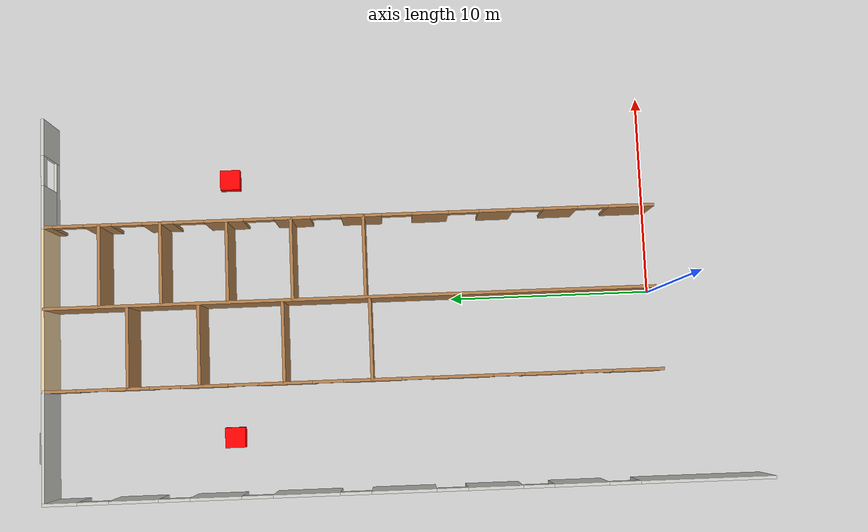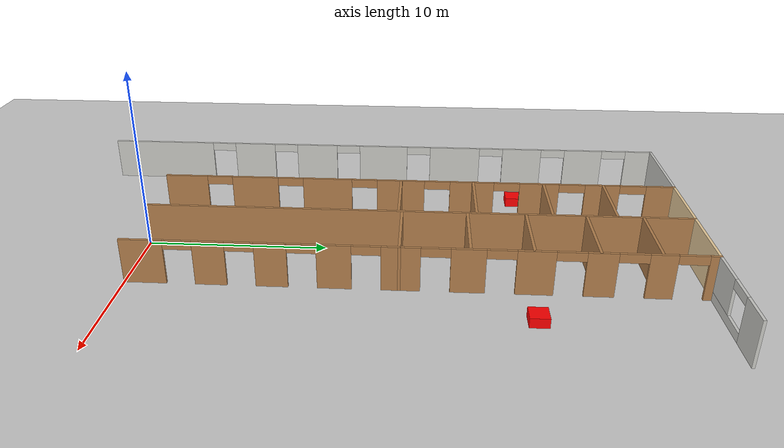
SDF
<sdf version="1.7">
 <world name="default">
  <model name="ground_plane">
   <static>1</static>
   <link name="link">
    <collision name="collision">
     <geometry><plane><normal>0 0 1</normal><size>100 100</size></plane></geometry>
     <surface>
      <contact><collide_bitmask>65535</collide_bitmask></contact>
      <friction><ode><mu>100</mu><mu2>50</mu2></ode></friction>
     </surface>
    </collision>
    <visual name="visual">
     <cast_shadows>0</cast_shadows>
     <geometry><plane><normal>0 0 1</normal><size>100 100</size></plane></geometry>
     <material>
      <script><uri>file://media/materials/scripts/gazebo.material</uri><name>Gazebo/Grey</name></script>
     </material>
    </visual>
   </link>
  </model>
  <model name="Untitled">
   <pose>0.082155 12.4683 0 0 -0 0</pose>
   <link name="Wall_20">
    <pose>-4.00683 2.5 0 0 -0 1.5708</pose>
    <visual name="Wall_20_Visual_0">
     <pose>-13.7495 0 1.25 0 -0 0</pose>
     <geometry><box><size>2.50101 0.15 2.5</size></box></geometry>
     <material>
      <script><uri>file://media/materials/scripts/gazebo.material</uri><name>Gazebo/Wood</name></script>
      <ambient>1 1 1 1</ambient>
     </material>
     <meta><layer>0</layer></meta>
    </visual>
    <collision name="Wall_20_Collision_0">
     <geometry><box><size>2.50101 0.15 2.5</size></box></geometry>
     <pose>-13.7495 0 1.25 0 -0 0</pose>
    </collision>
    <visual name="Wall_20_Visual_1">
     <pose>-9.62226 0 1.25 0 -0 0</pose>
     <geometry><box><size>2.75345 0.15 2.5</size></box></geometry>
     <material>
      <script><uri>file://media/materials/scripts/gazebo.material</uri><name>Gazebo/Wood</name></script>
      <ambient>1 1 1 1</ambient>
     </material>
     <meta><layer>0</layer></meta>
    </visual>
    <collision name="Wall_20_Collision_1">
     <geometry><box><size>2.75345 0.15 2.5</size></box></geometry>
     <pose>-9.62226 0 1.25 0 -0 0</pose>
    </collision>
    <visual name="Wall_20_Visual_2">
     <pose>-5.28856 0 1.25 0 -0 0</pose>
     <geometry><box><size>2.91396 0.15 2.5</size></box></geometry>
     <material>
      <script><uri>file://media/materials/scripts/gazebo.material</uri><name>Gazebo/Wood</name></script>
      <ambient>1 1 1 1</ambient>
     </material>
     <meta><layer>0</layer></meta>
    </visual>
    <collision name="Wall_20_Collision_2">
     <geometry><box><size>2.91396 0.15 2.5</size></box></geometry>
     <pose>-5.28856 0 1.25 0 -0 0</pose>
    </collision>
    <visual name="Wall_20_Visual_3">
     <pose>-0.934819 0 1.25 0 -0 0</pose>
     <geometry><box><size>2.79352 0.15 2.5</size></box></geometry>
     <material>
      <script><uri>file://media/materials/scripts/gazebo.material</uri><name>Gazebo/Wood</name></script>
      <ambient>1 1 1 1</ambient>
     </material>
     <meta><layer>0</layer></meta>
    </visual>
    <collision name="Wall_20_Collision_3">
     <geometry><box><size>2.79352 0.15 2.5</size></box></geometry>
     <pose>-0.934819 0 1.25 0 -0 0</pose>
    </collision>
    <visual name="Wall_20_Visual_4">
     <pose>3.24723 0 1.25 0 -0 0</pose>
     <geometry><box><size>2.57057 0.15 2.5</size></box></geometry>
     <material>
      <script><uri>file://media/materials/scripts/gazebo.material</uri><name>Gazebo/Wood</name></script>
      <ambient>1 1 1 1</ambient>
     </material>
     <meta><layer>0</layer></meta>
    </visual>
    <collision name="Wall_20_Collision_4">
     <geometry><box><size>2.57057 0.15 2.5</size></box></geometry>
     <pose>3.24723 0 1.25 0 -0 0</pose>
    </collision>
    <visual name="Wall_20_Visual_5">
     <pose>7.17743 0 1.25 0 -0 0</pose>
     <geometry><box><size>2.28984 0.15 2.5</size></box></geometry>
     <material>
      <script><uri>file://media/materials/scripts/gazebo.material</uri><name>Gazebo/Wood</name></script>
      <ambient>1 1 1 1</ambient>
     </material>
     <meta><layer>0</layer></meta>
    </visual>
    <collision name="Wall_20_Collision_5">
     <geometry><box><size>2.28984 0.15 2.5</size></box></geometry>
     <pose>7.17743 0 1.25 0 -0 0</pose>
    </collision>
    <visual name="Wall_20_Visual_6">
     <pose>10.8237 0 1.25 0 -0 0</pose>
     <geometry><box><size>2.00266 0.15 2.5</size></box></geometry>
     <material>
      <script><uri>file://media/materials/scripts/gazebo.material</uri><name>Gazebo/Wood</name></script>
      <ambient>1 1 1 1</ambient>
     </material>
     <meta><layer>0</layer></meta>
    </visual>
    <collision name="Wall_20_Collision_6">
     <geometry><box><size>2.00266 0.15 2.5</size></box></geometry>
     <pose>10.8237 0 1.25 0 -0 0</pose>
    </collision>
    <visual name="Wall_20_Visual_7">
     <pose>14.1625 0 1.25 0 -0 0</pose>
     <geometry><box><size>1.675 0.15 2.5</size></box></geometry>
     <material>
      <script><uri>file://media/materials/scripts/gazebo.material</uri><name>Gazebo/Wood</name></script>
      <ambient>1 1 1 1</ambient>
     </material>
     <meta><layer>0</layer></meta>
    </visual>
    <collision name="Wall_20_Collision_7">
     <geometry><box><size>1.675 0.15 2.5</size></box></geometry>
     <pose>14.1625 0 1.25 0 -0 0</pose>
    </collision>
    <visual name="Wall_20_Visual_8">
     <pose>-11.749 0 2.25 0 -0 0</pose>
     <geometry><box><size>1.5 0.15 0.5</size></box></geometry>
     <material>
      <script><uri>file://media/materials/scripts/gazebo.material</uri><name>Gazebo/Wood</name></script>
      <ambient>1 1 1 1</ambient>
     </material>
     <meta><layer>0</layer></meta>
    </visual>
    <collision name="Wall_20_Collision_8">
     <geometry><box><size>1.5 0.15 0.5</size></box></geometry>
     <pose>-11.749 0 2.25 0 -0 0</pose>
    </collision>
    <visual name="Wall_20_Visual_9">
     <pose>-7.49554 0 2.25 0 -0 0</pose>
     <geometry><box><size>1.5 0.15 0.5</size></box></geometry>
     <material>
      <script><uri>file://media/materials/scripts/gazebo.material</uri><name>Gazebo/Wood</name></script>
      <ambient>1 1 1 1</ambient>
     </material>
     <meta><layer>0</layer></meta>
    </visual>
    <collision name="Wall_20_Collision_9">
     <geometry><box><size>1.5 0.15 0.5</size></box></geometry>
     <pose>-7.49554 0 2.25 0 -0 0</pose>
    </collision>
    <visual name="Wall_20_Visual_10">
     <pose>-3.08158 0 2.25 0 -0 0</pose>
     <geometry><box><size>1.5 0.15 0.5</size></box></geometry>
     <material>
      <script><uri>file://media/materials/scripts/gazebo.material</uri><name>Gazebo/Wood</name></script>
      <ambient>1 1 1 1</ambient>
     </material>
     <meta><layer>0</layer></meta>
    </visual>
    <collision name="Wall_20_Collision_10">
     <geometry><box><size>1.5 0.15 0.5</size></box></geometry>
     <pose>-3.08158 0 2.25 0 -0 0</pose>
    </collision>
    <visual name="Wall_20_Visual_11">
     <pose>1.21194 0 2.25 0 -0 0</pose>
     <geometry><box><size>1.5 0.15 0.5</size></box></geometry>
     <material>
      <script><uri>file://media/materials/scripts/gazebo.material</uri><name>Gazebo/Wood</name></script>
      <ambient>1 1 1 1</ambient>
     </material>
     <meta><layer>0</layer></meta>
    </visual>
    <collision name="Wall_20_Collision_11">
     <geometry><box><size>1.5 0.15 0.5</size></box></geometry>
     <pose>1.21194 0 2.25 0 -0 0</pose>
    </collision>
    <visual name="Wall_20_Visual_12">
     <pose>5.28251 0 2.25 0 -0 0</pose>
     <geometry><box><size>1.5 0.15 0.5</size></box></geometry>
     <material>
      <script><uri>file://media/materials/scripts/gazebo.material</uri><name>Gazebo/Wood</name></script>
      <ambient>1 1 1 1</ambient>
     </material>
     <meta><layer>0</layer></meta>
    </visual>
    <collision name="Wall_20_Collision_12">
     <geometry><box><size>1.5 0.15 0.5</size></box></geometry>
     <pose>5.28251 0 2.25 0 -0 0</pose>
    </collision>
    <visual name="Wall_20_Visual_13">
     <pose>9.07234 0 2.25 0 -0 0</pose>
     <geometry><box><size>1.5 0.15 0.5</size></box></geometry>
     <material>
      <script><uri>file://media/materials/scripts/gazebo.material</uri><name>Gazebo/Wood</name></script>
      <ambient>1 1 1 1</ambient>
     </material>
     <meta><layer>0</layer></meta>
    </visual>
    <collision name="Wall_20_Collision_13">
     <geometry><box><size>1.5 0.15 0.5</size></box></geometry>
     <pose>9.07234 0 2.25 0 -0 0</pose>
    </collision>
    <visual name="Wall_20_Visual_14">
     <pose>12.575 0 2.25 0 -0 0</pose>
     <geometry><box><size>1.5 0.15 0.5</size></box></geometry>
     <material>
      <script><uri>file://media/materials/scripts/gazebo.material</uri><name>Gazebo/Wood</name></script>
      <ambient>1 1 1 1</ambient>
     </material>
     <meta><layer>0</layer></meta>
    </visual>
    <collision name="Wall_20_Collision_14">
     <geometry><box><size>1.5 0.15 0.5</size></box></geometry>
     <pose>12.575 0 2.25 0 -0 0</pose>
    </collision>
   </link>
   <link name="Wall_23">
    <collision name="Wall_23_Collision">
     <geometry><box><size>5.5 0.15 2.5</size></box></geometry>
     <pose>0 0 1.25 0 -0 0</pose>
    </collision>
    <visual name="Wall_23_Visual">
     <pose>0 0 1.25 0 -0 0</pose>
     <geometry><box><size>5.5 0.15 2.5</size></box></geometry>
     <material>
      <script><uri>file://media/materials/scripts/gazebo.material</uri><name>Gazebo/CeilingTiled</name></script>
      <ambient>0.921569 0.807843 0.615686 1</ambient>
     </material>
     <meta><layer>0</layer></meta>
    </visual>
    <pose>-6.68183 17.425 0 0 -0 3.14159</pose>
   </link>
   <link name="Wall_32">
    <pose>-9.35683 0 0 0 -0 -1.5708</pose>
    <visual name="Wall_32_Visual_0">
     <pose>-16.6643 0 1.25 0 -0 0</pose>
     <geometry><box><size>1.67142 0.15 2.5</size></box></geometry>
     <material>
      <script><uri>file://media/materials/scripts/gazebo.material</uri><name>Gazebo/CeilingTiled</name></script>
      <ambient>0.921569 0.807843 0.615686 1</ambient>
     </material>
     <meta><layer>0</layer></meta>
    </visual>
    <collision name="Wall_32_Collision_0">
     <geometry><box><size>1.67142 0.15 2.5</size></box></geometry>
     <pose>-16.6643 0 1.25 0 -0 0</pose>
    </collision>
    <visual name="Wall_32_Visual_1">
     <pose>-13.1416 0 1.25 0 -0 0</pose>
     <geometry><box><size>2.37406 0.15 2.5</size></box></geometry>
     <material>
      <script><uri>file://media/materials/scripts/gazebo.material</uri><name>Gazebo/CeilingTiled</name></script>
      <ambient>0.921569 0.807843 0.615686 1</ambient>
     </material>
     <meta><layer>0</layer></meta>
    </visual>
    <collision name="Wall_32_Collision_1">
     <geometry><box><size>2.37406 0.15 2.5</size></box></geometry>
     <pose>-13.1416 0 1.25 0 -0 0</pose>
    </collision>
    <visual name="Wall_32_Visual_2">
     <pose>-9.22261 0 1.25 0 -0 0</pose>
     <geometry><box><size>2.46382 0.15 2.5</size></box></geometry>
     <material>
      <script><uri>file://media/materials/scripts/gazebo.material</uri><name>Gazebo/CeilingTiled</name></script>
      <ambient>0.921569 0.807843 0.615686 1</ambient>
     </material>
     <meta><layer>0</layer></meta>
    </visual>
    <collision name="Wall_32_Collision_2">
     <geometry><box><size>2.46382 0.15 2.5</size></box></geometry>
     <pose>-9.22261 0 1.25 0 -0 0</pose>
    </collision>
    <visual name="Wall_32_Visual_3">
     <pose>-4.89246 0 1.25 0 -0 0</pose>
     <geometry><box><size>3.19648 0.15 2.5</size></box></geometry>
     <material>
      <script><uri>file://media/materials/scripts/gazebo.material</uri><name>Gazebo/CeilingTiled</name></script>
      <ambient>0.921569 0.807843 0.615686 1</ambient>
     </material>
     <meta><layer>0</layer></meta>
    </visual>
    <collision name="Wall_32_Collision_3">
     <geometry><box><size>3.19648 0.15 2.5</size></box></geometry>
     <pose>-4.89246 0 1.25 0 -0 0</pose>
    </collision>
    <visual name="Wall_32_Visual_4">
     <pose>-0.243282 0 1.25 0 -0 0</pose>
     <geometry><box><size>3.10188 0.15 2.5</size></box></geometry>
     <material>
      <script><uri>file://media/materials/scripts/gazebo.material</uri><name>Gazebo/CeilingTiled</name></script>
      <ambient>0.921569 0.807843 0.615686 1</ambient>
     </material>
     <meta><layer>0</layer></meta>
    </visual>
    <collision name="Wall_32_Collision_4">
     <geometry><box><size>3.10188 0.15 2.5</size></box></geometry>
     <pose>-0.243282 0 1.25 0 -0 0</pose>
    </collision>
    <visual name="Wall_32_Visual_5">
     <pose>4.11575 0 1.25 0 -0 0</pose>
     <geometry><box><size>2.61618 0.15 2.5</size></box></geometry>
     <material>
      <script><uri>file://media/materials/scripts/gazebo.material</uri><name>Gazebo/CeilingTiled</name></script>
      <ambient>0.921569 0.807843 0.615686 1</ambient>
     </material>
     <meta><layer>0</layer></meta>
    </visual>
    <collision name="Wall_32_Collision_5">
     <geometry><box><size>2.61618 0.15 2.5</size></box></geometry>
     <pose>4.11575 0 1.25 0 -0 0</pose>
    </collision>
    <visual name="Wall_32_Visual_6">
     <pose>8.23193 0 1.25 0 -0 0</pose>
     <geometry><box><size>2.61618 0.15 2.5</size></box></geometry>
     <material>
      <script><uri>file://media/materials/scripts/gazebo.material</uri><name>Gazebo/CeilingTiled</name></script>
      <ambient>0.921569 0.807843 0.615686 1</ambient>
     </material>
     <meta><layer>0</layer></meta>
    </visual>
    <collision name="Wall_32_Collision_6">
     <geometry><box><size>2.61618 0.15 2.5</size></box></geometry>
     <pose>8.23193 0 1.25 0 -0 0</pose>
    </collision>
    <visual name="Wall_32_Visual_7">
     <pose>14.27 0 1.25 0 -0 0</pose>
     <geometry><box><size>6.45998 0.15 2.5</size></box></geometry>
     <material>
      <script><uri>file://media/materials/scripts/gazebo.material</uri><name>Gazebo/CeilingTiled</name></script>
      <ambient>0.921569 0.807843 0.615686 1</ambient>
     </material>
     <meta><layer>0</layer></meta>
    </visual>
    <collision name="Wall_32_Collision_7">
     <geometry><box><size>6.45998 0.15 2.5</size></box></geometry>
     <pose>14.27 0 1.25 0 -0 0</pose>
    </collision>
    <visual name="Wall_32_Visual_8">
     <pose>-15.0786 0 2.25 0 -0 0</pose>
     <geometry><box><size>1.5 0.15 0.5</size></box></geometry>
     <material>
      <script><uri>file://media/materials/scripts/gazebo.material</uri><name>Gazebo/CeilingTiled</name></script>
      <ambient>0.921569 0.807843 0.615686 1</ambient>
     </material>
     <meta><layer>0</layer></meta>
    </visual>
    <collision name="Wall_32_Collision_8">
     <geometry><box><size>1.5 0.15 0.5</size></box></geometry>
     <pose>-15.0786 0 2.25 0 -0 0</pose>
    </collision>
    <visual name="Wall_32_Visual_9">
     <pose>-11.2045 0 2.25 0 -0 0</pose>
     <geometry><box><size>1.5 0.15 0.5</size></box></geometry>
     <material>
      <script><uri>file://media/materials/scripts/gazebo.material</uri><name>Gazebo/CeilingTiled</name></script>
      <ambient>0.921569 0.807843 0.615686 1</ambient>
     </material>
     <meta><layer>0</layer></meta>
    </visual>
    <collision name="Wall_32_Collision_9">
     <geometry><box><size>1.5 0.15 0.5</size></box></geometry>
     <pose>-11.2045 0 2.25 0 -0 0</pose>
    </collision>
    <visual name="Wall_32_Visual_10">
     <pose>-7.2407 0 2.25 0 -0 0</pose>
     <geometry><box><size>1.5 0.15 0.5</size></box></geometry>
     <material>
      <script><uri>file://media/materials/scripts/gazebo.material</uri><name>Gazebo/CeilingTiled</name></script>
      <ambient>0.921569 0.807843 0.615686 1</ambient>
     </material>
     <meta><layer>0</layer></meta>
    </visual>
    <collision name="Wall_32_Collision_10">
     <geometry><box><size>1.5 0.15 0.5</size></box></geometry>
     <pose>-7.2407 0 2.25 0 -0 0</pose>
    </collision>
    <visual name="Wall_32_Visual_11">
     <pose>-2.54422 0 2.25 0 -0 0</pose>
     <geometry><box><size>1.5 0.15 0.5</size></box></geometry>
     <material>
      <script><uri>file://media/materials/scripts/gazebo.material</uri><name>Gazebo/CeilingTiled</name></script>
      <ambient>0.921569 0.807843 0.615686 1</ambient>
     </material>
     <meta><layer>0</layer></meta>
    </visual>
    <collision name="Wall_32_Collision_11">
     <geometry><box><size>1.5 0.15 0.5</size></box></geometry>
     <pose>-2.54422 0 2.25 0 -0 0</pose>
    </collision>
    <visual name="Wall_32_Visual_12">
     <pose>2.05766 0 2.25 0 -0 0</pose>
     <geometry><box><size>1.5 0.15 0.5</size></box></geometry>
     <material>
      <script><uri>file://media/materials/scripts/gazebo.material</uri><name>Gazebo/CeilingTiled</name></script>
      <ambient>0.921569 0.807843 0.615686 1</ambient>
     </material>
     <meta><layer>0</layer></meta>
    </visual>
    <collision name="Wall_32_Collision_12">
     <geometry><box><size>1.5 0.15 0.5</size></box></geometry>
     <pose>2.05766 0 2.25 0 -0 0</pose>
    </collision>
    <visual name="Wall_32_Visual_13">
     <pose>6.17384 0 2.25 0 -0 0</pose>
     <geometry><box><size>1.5 0.15 0.5</size></box></geometry>
     <material>
      <script><uri>file://media/materials/scripts/gazebo.material</uri><name>Gazebo/CeilingTiled</name></script>
      <ambient>0.921569 0.807843 0.615686 1</ambient>
     </material>
     <meta><layer>0</layer></meta>
    </visual>
    <collision name="Wall_32_Collision_13">
     <geometry><box><size>1.5 0.15 0.5</size></box></geometry>
     <pose>6.17384 0 2.25 0 -0 0</pose>
    </collision>
    <visual name="Wall_32_Visual_14">
     <pose>10.29 0 2.25 0 -0 0</pose>
     <geometry><box><size>1.5 0.15 0.5</size></box></geometry>
     <material>
      <script><uri>file://media/materials/scripts/gazebo.material</uri><name>Gazebo/CeilingTiled</name></script>
      <ambient>0.921569 0.807843 0.615686 1</ambient>
     </material>
     <meta><layer>0</layer></meta>
    </visual>
    <collision name="Wall_32_Collision_14">
     <geometry><box><size>1.5 0.15 0.5</size></box></geometry>
     <pose>10.29 0 2.25 0 -0 0</pose>
    </collision>
   </link>
   <link name="Wall_40">
    <pose>6.68183 17.425 0 0 -0 3.14159</pose>
    <visual name="Wall_40_Visual_0">
     <pose>-1.83447 0 1.25 0 -0 0</pose>
     <geometry><box><size>1.83106 0.15 2.5</size></box></geometry>
     <material>
      <script><uri>file://media/materials/scripts/gazebo.material</uri><name>Gazebo/CeilingTiled</name></script>
      <ambient>0.921569 0.807843 0.615686 1</ambient>
     </material>
     <meta><layer>0</layer></meta>
    </visual>
    <collision name="Wall_40_Collision_0">
     <geometry><box><size>1.83106 0.15 2.5</size></box></geometry>
     <pose>-1.83447 0 1.25 0 -0 0</pose>
    </collision>
    <visual name="Wall_40_Visual_1">
     <pose>0.915531 0 0.25 0 -0 0</pose>
     <geometry><box><size>3.66894 0.15 0.5</size></box></geometry>
     <material>
      <script><uri>file://media/materials/scripts/gazebo.material</uri><name>Gazebo/CeilingTiled</name></script>
      <ambient>0.921569 0.807843 0.615686 1</ambient>
     </material>
     <meta><layer>0</layer></meta>
    </visual>
    <collision name="Wall_40_Collision_1">
     <geometry><box><size>3.66894 0.15 0.5</size></box></geometry>
     <pose>0.915531 0 0.25 0 -0 0</pose>
    </collision>
    <visual name="Wall_40_Visual_2">
     <pose>1.66553 0 1.5 0 -0 0</pose>
     <geometry><box><size>2.16894 0.15 2</size></box></geometry>
     <material>
      <script><uri>file://media/materials/scripts/gazebo.material</uri><name>Gazebo/CeilingTiled</name></script>
      <ambient>0.921569 0.807843 0.615686 1</ambient>
     </material>
     <meta><layer>0</layer></meta>
    </visual>
    <collision name="Wall_40_Collision_2">
     <geometry><box><size>2.16894 0.15 2</size></box></geometry>
     <pose>1.66553 0 1.5 0 -0 0</pose>
    </collision>
    <visual name="Wall_40_Visual_3">
     <pose>-0.168938 0 2.25 0 -0 0</pose>
     <geometry><box><size>1.5 0.15 0.5</size></box></geometry>
     <material>
      <script><uri>file://media/materials/scripts/gazebo.material</uri><name>Gazebo/CeilingTiled</name></script>
      <ambient>0.921569 0.807843 0.615686 1</ambient>
     </material>
     <meta><layer>0</layer></meta>
    </visual>
    <collision name="Wall_40_Collision_3">
     <geometry><box><size>1.5 0.15 0.5</size></box></geometry>
     <pose>-0.168938 0 2.25 0 -0 0</pose>
    </collision>
   </link>
   <link name="Wall_43">
    <pose>4.00683 2.5 0 0 -0 -1.5708</pose>
    <visual name="Wall_43_Visual_0">
     <pose>-14.7194 0 1.25 0 -0 0</pose>
     <geometry><box><size>0.561153 0.15 2.5</size></box></geometry>
     <material>
      <script><uri>file://media/materials/scripts/gazebo.material</uri><name>Gazebo/Wood</name></script>
      <ambient>1 1 1 1</ambient>
     </material>
     <meta><layer>0</layer></meta>
    </visual>
    <collision name="Wall_43_Collision_0">
     <geometry><box><size>0.561153 0.15 2.5</size></box></geometry>
     <pose>-14.7194 0 1.25 0 -0 0</pose>
    </collision>
    <visual name="Wall_43_Visual_1">
     <pose>-12.2543 0 1.25 0 -0 0</pose>
     <geometry><box><size>1.36904 0.15 2.5</size></box></geometry>
     <material>
      <script><uri>file://media/materials/scripts/gazebo.material</uri><name>Gazebo/Wood</name></script>
      <ambient>1 1 1 1</ambient>
     </material>
     <meta><layer>0</layer></meta>
    </visual>
    <collision name="Wall_43_Collision_1">
     <geometry><box><size>1.36904 0.15 2.5</size></box></geometry>
     <pose>-12.2543 0 1.25 0 -0 0</pose>
    </collision>
    <visual name="Wall_43_Visual_2">
     <pose>-9.30531 0 1.25 0 -0 0</pose>
     <geometry><box><size>1.52899 0.15 2.5</size></box></geometry>
     <material>
      <script><uri>file://media/materials/scripts/gazebo.material</uri><name>Gazebo/Wood</name></script>
      <ambient>1 1 1 1</ambient>
     </material>
     <meta><layer>0</layer></meta>
    </visual>
    <collision name="Wall_43_Collision_2">
     <geometry><box><size>1.52899 0.15 2.5</size></box></geometry>
     <pose>-9.30531 0 1.25 0 -0 0</pose>
    </collision>
    <visual name="Wall_43_Visual_3">
     <pose>-6.07969 0 1.25 0 -0 0</pose>
     <geometry><box><size>1.92226 0.15 2.5</size></box></geometry>
     <material>
      <script><uri>file://media/materials/scripts/gazebo.material</uri><name>Gazebo/Wood</name></script>
      <ambient>1 1 1 1</ambient>
     </material>
     <meta><layer>0</layer></meta>
    </visual>
    <collision name="Wall_43_Collision_3">
     <geometry><box><size>1.92226 0.15 2.5</size></box></geometry>
     <pose>-6.07969 0 1.25 0 -0 0</pose>
    </collision>
    <visual name="Wall_43_Visual_4">
     <pose>-2.73275 0 1.25 0 -0 0</pose>
     <geometry><box><size>1.77163 0.15 2.5</size></box></geometry>
     <material>
      <script><uri>file://media/materials/scripts/gazebo.material</uri><name>Gazebo/Wood</name></script>
      <ambient>1 1 1 1</ambient>
     </material>
     <meta><layer>0</layer></meta>
    </visual>
    <collision name="Wall_43_Collision_4">
     <geometry><box><size>1.77163 0.15 2.5</size></box></geometry>
     <pose>-2.73275 0 1.25 0 -0 0</pose>
    </collision>
    <visual name="Wall_43_Visual_5">
     <pose>0.644415 0 1.25 0 -0 0</pose>
     <geometry><box><size>1.9827 0.15 2.5</size></box></geometry>
     <material>
      <script><uri>file://media/materials/scripts/gazebo.material</uri><name>Gazebo/Wood</name></script>
      <ambient>1 1 1 1</ambient>
     </material>
     <meta><layer>0</layer></meta>
    </visual>
    <collision name="Wall_43_Collision_5">
     <geometry><box><size>1.9827 0.15 2.5</size></box></geometry>
     <pose>0.644415 0 1.25 0 -0 0</pose>
    </collision>
    <visual name="Wall_43_Visual_6">
     <pose>4.02158 0 1.25 0 -0 0</pose>
     <geometry><box><size>1.77163 0.15 2.5</size></box></geometry>
     <material>
      <script><uri>file://media/materials/scripts/gazebo.material</uri><name>Gazebo/Wood</name></script>
      <ambient>1 1 1 1</ambient>
     </material>
     <meta><layer>0</layer></meta>
    </visual>
    <collision name="Wall_43_Collision_6">
     <geometry><box><size>1.77163 0.15 2.5</size></box></geometry>
     <pose>4.02158 0 1.25 0 -0 0</pose>
    </collision>
    <visual name="Wall_43_Visual_7">
     <pose>7.24043 0 1.25 0 -0 0</pose>
     <geometry><box><size>1.66609 0.15 2.5</size></box></geometry>
     <material>
      <script><uri>file://media/materials/scripts/gazebo.material</uri><name>Gazebo/Wood</name></script>
      <ambient>1 1 1 1</ambient>
     </material>
     <meta><layer>0</layer></meta>
    </visual>
    <collision name="Wall_43_Collision_7">
     <geometry><box><size>1.66609 0.15 2.5</size></box></geometry>
     <pose>7.24043 0 1.25 0 -0 0</pose>
    </collision>
    <visual name="Wall_43_Visual_8">
     <pose>10.4065 0 1.25 0 -0 0</pose>
     <geometry><box><size>1.66609 0.15 2.5</size></box></geometry>
     <material>
      <script><uri>file://media/materials/scripts/gazebo.material</uri><name>Gazebo/Wood</name></script>
      <ambient>1 1 1 1</ambient>
     </material>
     <meta><layer>0</layer></meta>
    </visual>
    <collision name="Wall_43_Collision_8">
     <geometry><box><size>1.66609 0.15 2.5</size></box></geometry>
     <pose>10.4065 0 1.25 0 -0 0</pose>
    </collision>
    <visual name="Wall_43_Visual_9">
     <pose>13.8698 0 1.25 0 -0 0</pose>
     <geometry><box><size>2.26043 0.15 2.5</size></box></geometry>
     <material>
      <script><uri>file://media/materials/scripts/gazebo.material</uri><name>Gazebo/Wood</name></script>
      <ambient>1 1 1 1</ambient>
     </material>
     <meta><layer>0</layer></meta>
    </visual>
    <collision name="Wall_43_Collision_9">
     <geometry><box><size>2.26043 0.15 2.5</size></box></geometry>
     <pose>13.8698 0 1.25 0 -0 0</pose>
    </collision>
    <visual name="Wall_43_Visual_10">
     <pose>-13.6888 0 2.25 0 -0 0</pose>
     <geometry><box><size>1.5 0.15 0.5</size></box></geometry>
     <material>
      <script><uri>file://media/materials/scripts/gazebo.material</uri><name>Gazebo/Wood</name></script>
      <ambient>1 1 1 1</ambient>
     </material>
     <meta><layer>0</layer></meta>
    </visual>
    <collision name="Wall_43_Collision_10">
     <geometry><box><size>1.5 0.15 0.5</size></box></geometry>
     <pose>-13.6888 0 2.25 0 -0 0</pose>
    </collision>
    <visual name="Wall_43_Visual_11">
     <pose>-10.8198 0 2.25 0 -0 0</pose>
     <geometry><box><size>1.5 0.15 0.5</size></box></geometry>
     <material>
      <script><uri>file://media/materials/scripts/gazebo.material</uri><name>Gazebo/Wood</name></script>
      <ambient>1 1 1 1</ambient>
     </material>
     <meta><layer>0</layer></meta>
    </visual>
    <collision name="Wall_43_Collision_11">
     <geometry><box><size>1.5 0.15 0.5</size></box></geometry>
     <pose>-10.8198 0 2.25 0 -0 0</pose>
    </collision>
    <visual name="Wall_43_Visual_12">
     <pose>-7.79082 0 2.25 0 -0 0</pose>
     <geometry><box><size>1.5 0.15 0.5</size></box></geometry>
     <material>
      <script><uri>file://media/materials/scripts/gazebo.material</uri><name>Gazebo/Wood</name></script>
      <ambient>1 1 1 1</ambient>
     </material>
     <meta><layer>0</layer></meta>
    </visual>
    <collision name="Wall_43_Collision_12">
     <geometry><box><size>1.5 0.15 0.5</size></box></geometry>
     <pose>-7.79082 0 2.25 0 -0 0</pose>
    </collision>
    <visual name="Wall_43_Visual_13">
     <pose>-4.36856 0 2.25 0 -0 0</pose>
     <geometry><box><size>1.5 0.15 0.5</size></box></geometry>
     <material>
      <script><uri>file://media/materials/scripts/gazebo.material</uri><name>Gazebo/Wood</name></script>
      <ambient>1 1 1 1</ambient>
     </material>
     <meta><layer>0</layer></meta>
    </visual>
    <collision name="Wall_43_Collision_13">
     <geometry><box><size>1.5 0.15 0.5</size></box></geometry>
     <pose>-4.36856 0 2.25 0 -0 0</pose>
    </collision>
    <visual name="Wall_43_Visual_14">
     <pose>-1.09693 0 2.25 0 -0 0</pose>
     <geometry><box><size>1.5 0.15 0.5</size></box></geometry>
     <material>
      <script><uri>file://media/materials/scripts/gazebo.material</uri><name>Gazebo/Wood</name></script>
      <ambient>1 1 1 1</ambient>
     </material>
     <meta><layer>0</layer></meta>
    </visual>
    <collision name="Wall_43_Collision_14">
     <geometry><box><size>1.5 0.15 0.5</size></box></geometry>
     <pose>-1.09693 0 2.25 0 -0 0</pose>
    </collision>
    <visual name="Wall_43_Visual_15">
     <pose>2.38576 0 2.25 0 -0 0</pose>
     <geometry><box><size>1.5 0.15 0.5</size></box></geometry>
     <material>
      <script><uri>file://media/materials/scripts/gazebo.material</uri><name>Gazebo/Wood</name></script>
      <ambient>1 1 1 1</ambient>
     </material>
     <meta><layer>0</layer></meta>
    </visual>
    <collision name="Wall_43_Collision_15">
     <geometry><box><size>1.5 0.15 0.5</size></box></geometry>
     <pose>2.38576 0 2.25 0 -0 0</pose>
    </collision>
    <visual name="Wall_43_Visual_16">
     <pose>5.65739 0 2.25 0 -0 0</pose>
     <geometry><box><size>1.5 0.15 0.5</size></box></geometry>
     <material>
      <script><uri>file://media/materials/scripts/gazebo.material</uri><name>Gazebo/Wood</name></script>
      <ambient>1 1 1 1</ambient>
     </material>
     <meta><layer>0</layer></meta>
    </visual>
    <collision name="Wall_43_Collision_16">
     <geometry><box><size>1.5 0.15 0.5</size></box></geometry>
     <pose>5.65739 0 2.25 0 -0 0</pose>
    </collision>
    <visual name="Wall_43_Visual_17">
     <pose>8.82348 0 2.25 0 -0 0</pose>
     <geometry><box><size>1.5 0.15 0.5</size></box></geometry>
     <material>
      <script><uri>file://media/materials/scripts/gazebo.material</uri><name>Gazebo/Wood</name></script>
      <ambient>1 1 1 1</ambient>
     </material>
     <meta><layer>0</layer></meta>
    </visual>
    <collision name="Wall_43_Collision_17">
     <geometry><box><size>1.5 0.15 0.5</size></box></geometry>
     <pose>8.82348 0 2.25 0 -0 0</pose>
    </collision>
    <visual name="Wall_43_Visual_18">
     <pose>11.9896 0 2.25 0 -0 0</pose>
     <geometry><box><size>1.5 0.15 0.5</size></box></geometry>
     <material>
      <script><uri>file://media/materials/scripts/gazebo.material</uri><name>Gazebo/Wood</name></script>
      <ambient>1 1 1 1</ambient>
     </material>
     <meta><layer>0</layer></meta>
    </visual>
    <collision name="Wall_43_Collision_18">
     <geometry><box><size>1.5 0.15 0.5</size></box></geometry>
     <pose>11.9896 0 2.25 0 -0 0</pose>
    </collision>
   </link>
   <link name="Wall_47">
    <collision name="Wall_47_Collision">
     <geometry><box><size>29.8 0.15 2.5</size></box></geometry>
     <pose>0 0 1.25 0 -0 0</pose>
    </collision>
    <visual name="Wall_47_Visual">
     <pose>0 0 1.25 0 -0 0</pose>
     <geometry><box><size>29.8 0.15 2.5</size></box></geometry>
     <material>
      <script><uri>file://media/materials/scripts/gazebo.material</uri><name>Gazebo/Wood</name></script>
      <ambient>0.921569 0.807843 0.615686 1</ambient>
     </material>
     <meta><layer>0</layer></meta>
    </visual>
    <pose>0.001016 2.55119 0 0 -0 1.5708</pose>
   </link>
   <link name="Wall_49">
    <collision name="Wall_49_Collision">
     <geometry><box><size>8.16366 0.15 2.5</size></box></geometry>
     <pose>0 0 1.25 0 -0 0</pose>
    </collision>
    <visual name="Wall_49_Visual">
     <pose>0 0 1.25 0 -0 0</pose>
     <geometry><box><size>8.16366 0.15 2.5</size></box></geometry>
     <material>
      <script><uri>file://media/materials/scripts/gazebo.material</uri><name>Gazebo/Grey</name></script>
      <ambient>0.921569 0.807843 0.615686 1</ambient>
     </material>
     <meta><layer>0</layer></meta>
    </visual>
    <pose>0 17.425 0 0 -0 3.14159</pose>
   </link>
   <link name="Wall_57">
    <collision name="Wall_57_Collision">
     <geometry><box><size>4 0.15 2.5</size></box></geometry>
     <pose>0 0 1.25 0 -0 0</pose>
    </collision>
    <visual name="Wall_57_Visual">
     <pose>0 0 1.25 0 -0 0</pose>
     <geometry><box><size>4 0.15 2.5</size></box></geometry>
     <material>
      <script><uri>file://media/materials/scripts/gazebo.material</uri><name>Gazebo/Wood</name></script>
      <ambient>1 1 1 1</ambient>
     </material>
     <meta><layer>0</layer></meta>
    </visual>
    <pose>-2.03052 1.59011 0 0 -0 0</pose>
   </link>
   <link name="Wall_59">
    <collision name="Wall_59_Collision">
     <geometry><box><size>4 0.15 2.5</size></box></geometry>
     <pose>0 0 1.25 0 -0 0</pose>
    </collision>
    <visual name="Wall_59_Visual">
     <pose>0 0 1.25 0 -0 0</pose>
     <geometry><box><size>4 0.15 2.5</size></box></geometry>
     <material>
      <script><uri>file://media/materials/scripts/gazebo.material</uri><name>Gazebo/Wood</name></script>
      <ambient>1 1 1 1</ambient>
     </material>
     <meta><layer>0</layer></meta>
    </visual>
    <pose>-2.04528 5.8208 0 0 -0 0</pose>
   </link>
   <link name="Wall_61">
    <collision name="Wall_61_Collision">
     <geometry><box><size>4 0.15 2.5</size></box></geometry>
     <pose>0 0 1.25 0 -0 0</pose>
    </collision>
    <visual name="Wall_61_Visual">
     <pose>0 0 1.25 0 -0 0</pose>
     <geometry><box><size>4 0.15 2.5</size></box></geometry>
     <material>
      <script><uri>file://media/materials/scripts/gazebo.material</uri><name>Gazebo/Wood</name></script>
      <ambient>0.760784 0.662745 0.627451 1</ambient>
     </material>
     <meta><layer>0</layer></meta>
    </visual>
    <pose>-2.03149 9.90667 0 0 -0 0</pose>
   </link>
   <link name="Wall_63">
    <collision name="Wall_63_Collision">
     <geometry><box><size>4 0.15 2.5</size></box></geometry>
     <pose>0 0 1.25 0 -0 0</pose>
    </collision>
    <visual name="Wall_63_Visual">
     <pose>0 0 1.25 0 -0 0</pose>
     <geometry><box><size>4 0.15 2.5</size></box></geometry>
     <material>
      <script><uri>file://media/materials/scripts/gazebo.material</uri><name>Gazebo/Wood</name></script>
      <ambient>0.760784 0.662745 0.627451 1</ambient>
     </material>
     <meta><layer>0</layer></meta>
    </visual>
    <pose>-2.03149 13.3567 0 0 -0 0</pose>
   </link>
   <link name="Wall_71">
    <collision name="Wall_71_Collision">
     <geometry><box><size>4 0.15 2.5</size></box></geometry>
     <pose>0 0 1.25 0 -0 0</pose>
    </collision>
    <visual name="Wall_71_Visual">
     <pose>0 0 1.25 0 -0 0</pose>
     <geometry><box><size>4 0.15 2.5</size></box></geometry>
     <material>
      <script><uri>file://media/materials/scripts/gazebo.material</uri><name>Gazebo/Wood</name></script>
      <ambient>1 1 1 1</ambient>
     </material>
     <meta><layer>0</layer></meta>
    </visual>
    <pose>2.08239 1.77083 0 0 -0 3.14159</pose>
   </link>
   <link name="Wall_73">
    <collision name="Wall_73_Collision">
     <geometry><box><size>4 0.15 2.5</size></box></geometry>
     <pose>0 0 1.25 0 -0 0</pose>
    </collision>
    <visual name="Wall_73_Visual">
     <pose>0 0 1.25 0 -0 0</pose>
     <geometry><box><size>4 0.15 2.5</size></box></geometry>
     <material>
      <script><uri>file://media/materials/scripts/gazebo.material</uri><name>Gazebo/Wood</name></script>
      <ambient>1 1 1 1</ambient>
     </material>
     <meta><layer>0</layer></meta>
    </visual>
    <pose>2.03087 5.31484 0 0 -0 3.14159</pose>
   </link>
   <link name="Wall_75">
    <collision name="Wall_75_Collision">
     <geometry><box><size>4 0.15 2.5</size></box></geometry>
     <pose>0 0 1.25 0 -0 0</pose>
    </collision>
    <visual name="Wall_75_Visual">
     <pose>0 0 1.25 0 -0 0</pose>
     <geometry><box><size>4 0.15 2.5</size></box></geometry>
     <material>
      <script><uri>file://media/materials/scripts/gazebo.material</uri><name>Gazebo/Wood</name></script>
      <ambient>1 1 1 1</ambient>
     </material>
     <meta><layer>0</layer></meta>
    </visual>
    <pose>2.04253 8.46384 0 0 -0 3.14159</pose>
   </link>
   <link name="Wall_77">
    <collision name="Wall_77_Collision">
     <geometry><box><size>4 0.15 2.5</size></box></geometry>
     <pose>0 0 1.25 0 -0 0</pose>
    </collision>
    <visual name="Wall_77_Visual">
     <pose>0 0 1.25 0 -0 0</pose>
     <geometry><box><size>4 0.15 2.5</size></box></geometry>
     <material>
      <script><uri>file://media/materials/scripts/gazebo.material</uri><name>Gazebo/Wood</name></script>
      <ambient>1 1 1 1</ambient>
     </material>
     <meta><layer>0</layer></meta>
    </visual>
    <pose>2.04849 11.6982 0 0 -0 3.14159</pose>
   </link>
   <link name="Wall_79">
    <collision name="Wall_79_Collision">
     <geometry><box><size>4 0.15 2.5</size></box></geometry>
     <pose>0 0 1.25 0 -0 0</pose>
    </collision>
    <visual name="Wall_79_Visual">
     <pose>0 0 1.25 0 -0 0</pose>
     <geometry><box><size>4 0.15 2.5</size></box></geometry>
     <material>
      <script><uri>file://media/materials/scripts/gazebo.material</uri><name>Gazebo/Wood</name></script>
      <ambient>1 1 1 1</ambient>
     </material>
     <meta><layer>0</layer></meta>
    </visual>
    <pose>2.04849 14.6982 0 0 -0 3.14159</pose>
   </link>
   <link name="Window_2">
    <collision name="Window_2_Collision">
     <geometry><box><size>1.5 0.17 1.5</size></box></geometry>
     <pose>0 0 0.75 0 -0 0</pose>
    </collision>
    <visual name="Window_2_Visual">
     <pose>0 0 0.75 0 -0 0</pose>
     <geometry><box><size>1.5 0.17 1.5</size></box></geometry>
     <material>
      <script><uri>file://media/materials/scripts/gazebo.material</uri><name>Gazebo/Grey</name></script>
     </material>
    </visual>
    <pose>-6.69556 17.6405 0.5 0 -0 0</pose>
   </link>
   <static>1</static>
  </model>
  <model name="static_obstacle_02">
   <pose>6.5 21.0 0 0 0 0</pose>
   <static>true</static>
   <link name="obstacle_link">
    <visual name="obstacle_visual">
     <geometry><box><size>1 1 1</size></box></geometry>
     <material><ambient>1 0 0 1</ambient><diffuse>1 0 0 1</diffuse></material>
    </visual>
    <collision name="obstacle_collision">
     <geometry><box><size>1 1 1</size></box></geometry>
     <surface><friction><ode><mu>1.0</mu><mu2>1.0</mu2></ode></friction></surface>
    </collision>
   </link>
  </model>
  <model name="static_obstacle_04">
   <pose>-6.5 21.0 0 0 0 0</pose>
   <static>true</static>
   <link name="obstacle_link">
    <visual name="obstacle_visual">
     <geometry><box><size>1 1 1</size></box></geometry>
     <material><ambient>1 0 0 1</ambient><diffuse>1 0 0 1</diffuse></material>
    </visual>
    <collision name="obstacle_collision">
     <geometry><box><size>1 1 1</size></box></geometry>
     <surface><friction><ode><mu>1.0</mu><mu2>1.0</mu2></ode></friction></surface>
    </collision>
   </link>
  </model>
 </world>
</sdf>
